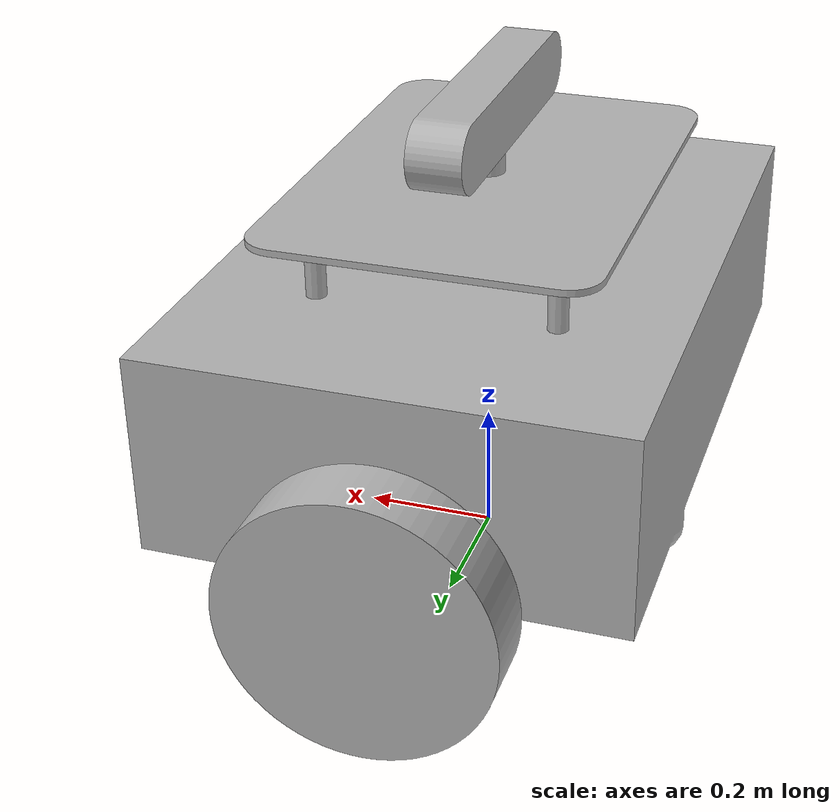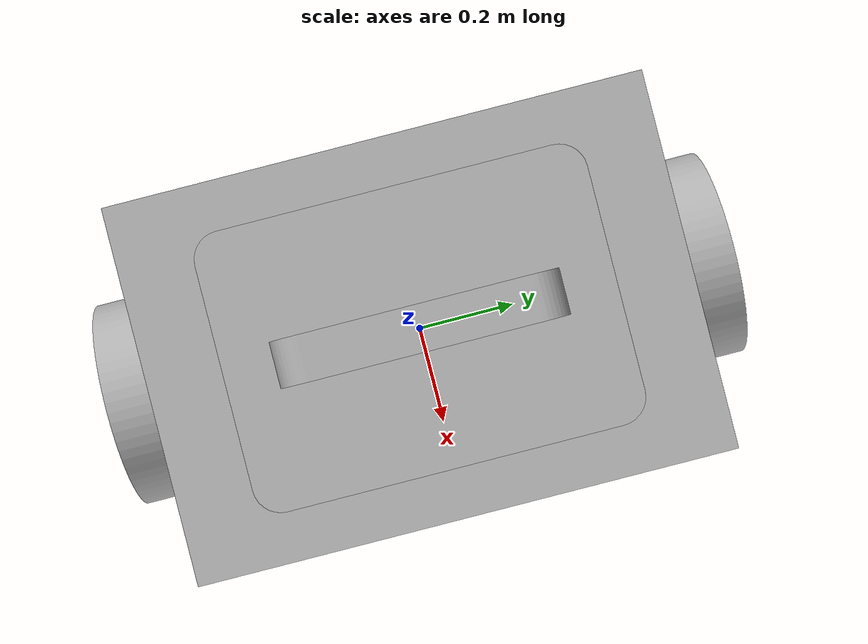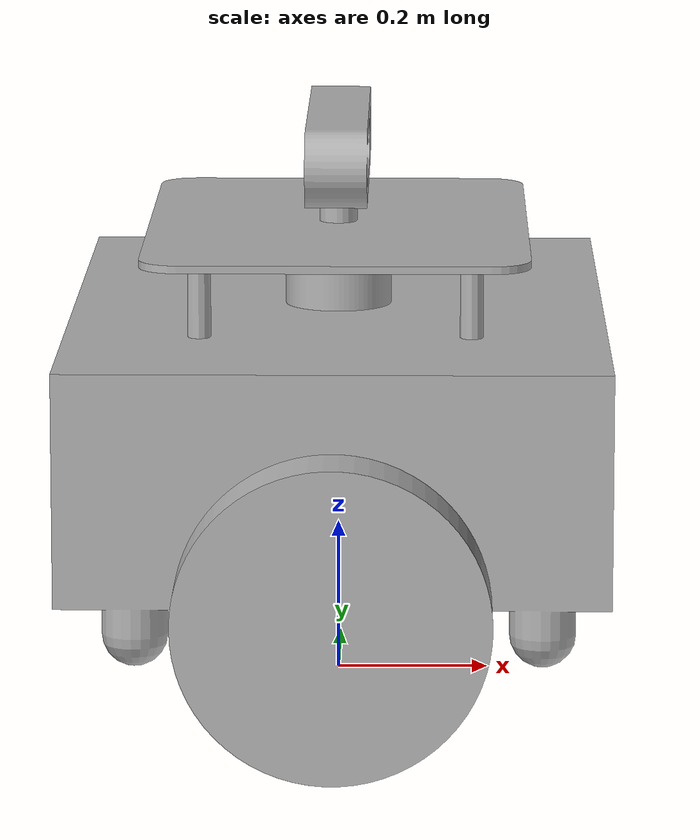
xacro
<?xml version="1.0" ?>
<robot name="fusion_to_urdf_try" xmlns:xacro="http://www.ros.org/wiki/xacro">

<xacro:include filename="$(find fusion_to_urdf_try_description)/urdf/materials.xacro" />
<xacro:include filename="$(find fusion_to_urdf_try_description)/urdf/fusion_to_urdf_try.trans" />
<xacro:include filename="$(find fusion_to_urdf_try_description)/urdf/fusion_to_urdf_try.gazebo" />
<link name="base_link">
  <inertial>
    <origin rpy="0 0 0" xyz="3.836774317438018e-14 -1.7519517431223827e-16 0.3475781551365197"/>
    <mass value="574.1187704132183"/>
    <inertia ixx="51.974322" ixy="-0.0" ixz="0.0" iyy="28.333113" iyz="-0.0" izz="70.960529"/>
  </inertial>
  <visual>
    <origin rpy="0 0 0" xyz="0 0 0"/>
    <geometry>
      <mesh filename="package://fusion_to_urdf_try_description/meshes/base_link.stl" scale="0.001 0.001 0.001"/>
    </geometry>
    <material name="silver"/>
  </visual>
  <collision>
    <origin rpy="0 0 0" xyz="0 0 0"/>
    <geometry>
      <mesh filename="package://fusion_to_urdf_try_description/meshes/base_link.stl" scale="0.001 0.001 0.001"/>
    </geometry>
  </collision>
</link>

<link name="right_wheel_link_1">
  <inertial>
    <origin rpy="0 0 0" xyz="-8.348877145181177e-16 -0.04999999999999993 -4.718447854656915e-16"/>
    <mass value="11.686724671354028"/>
    <inertia ixx="0.126606" ixy="-0.0" ixz="-0.0" iyy="0.233734" iyz="0.0" izz="0.126606"/>
  </inertial>
  <visual>
    <origin rpy="0 0 0" xyz="-0.0 0.5 -0.2"/>
    <geometry>
      <mesh filename="package://fusion_to_urdf_try_description/meshes/right_wheel_link_1.stl" scale="0.001 0.001 0.001"/>
    </geometry>
    <material name="silver"/>
  </visual>
  <collision>
    <origin rpy="0 0 0" xyz="-0.0 0.5 -0.2"/>
    <geometry>
      <mesh filename="package://fusion_to_urdf_try_description/meshes/right_wheel_link_1.stl" scale="0.001 0.001 0.001"/>
    </geometry>
  </collision>
</link>

<link name="left_wheel_link_1">
  <inertial>
    <origin rpy="0 0 0" xyz="-2.3160092400488117e-17 0.050000000000000044 0.0"/>
    <mass value="11.686724671354028"/>
    <inertia ixx="0.126606" ixy="0.0" ixz="0.0" iyy="0.233734" iyz="0.0" izz="0.126606"/>
  </inertial>
  <visual>
    <origin rpy="0 0 0" xyz="-0.0 -0.5 -0.2"/>
    <geometry>
      <mesh filename="package://fusion_to_urdf_try_description/meshes/left_wheel_link_1.stl" scale="0.001 0.001 0.001"/>
    </geometry>
    <material name="silver"/>
  </visual>
  <collision>
    <origin rpy="0 0 0" xyz="-0.0 -0.5 -0.2"/>
    <geometry>
      <mesh filename="package://fusion_to_urdf_try_description/meshes/left_wheel_link_1.stl" scale="0.001 0.001 0.001"/>
    </geometry>
  </collision>
</link>

<link name="lidar_link_1">
  <inertial>
    <origin rpy="0 0 0" xyz="-7.060360187511366e-18 -2.155131490299886e-17 0.03689248889946972"/>
    <mass value="8.904370924987676"/>
    <inertia ixx="0.014807" ixy="0.0" ixz="-0.0" iyy="0.014807" iyz="-0.0" izz="0.021496"/>
  </inertial>
  <visual>
    <origin rpy="0 0 0" xyz="-0.0 -0.0 -0.5"/>
    <geometry>
      <mesh filename="package://fusion_to_urdf_try_description/meshes/lidar_link_1.stl" scale="0.001 0.001 0.001"/>
    </geometry>
    <material name="silver"/>
  </visual>
  <collision>
    <origin rpy="0 0 0" xyz="-0.0 -0.0 -0.5"/>
    <geometry>
      <mesh filename="package://fusion_to_urdf_try_description/meshes/lidar_link_1.stl" scale="0.001 0.001 0.001"/>
    </geometry>
  </collision>
</link>

<link name="pad_link_1">
  <inertial>
    <origin rpy="0 0 0" xyz="1.4361856253843233e-14 -8.137029039004664e-17 0.10582344929719556"/>
    <mass value="5.8157379180789555"/>
    <inertia ixx="0.228618" ixy="-0.0" ixz="0.0" iyy="0.116814" iyz="0.0" izz="0.344992"/>
  </inertial>
  <visual>
    <origin rpy="0 0 0" xyz="-0.0 -0.0 -0.5"/>
    <geometry>
      <mesh filename="package://fusion_to_urdf_try_description/meshes/pad_link_1.stl" scale="0.001 0.001 0.001"/>
    </geometry>
    <material name="silver"/>
  </visual>
  <collision>
    <origin rpy="0 0 0" xyz="-0.0 -0.0 -0.5"/>
    <geometry>
      <mesh filename="package://fusion_to_urdf_try_description/meshes/pad_link_1.stl" scale="0.001 0.001 0.001"/>
    </geometry>
  </collision>
</link>

<link name="rgbd_link_1">
  <inertial>
    <origin rpy="0 0 0" xyz="-0.00132427759931936 0.0022759115610179186 0.05000124610435108"/>
    <mass value="5.943682567131456"/>
    <inertia ixx="0.111317" ixy="-0.030273" ixz="-0.0" iyy="0.016706" iyz="0.0" izz="0.118167"/>
  </inertial>
  <visual>
    <origin rpy="0 0 0" xyz="-0.0 -0.0 -0.66"/>
    <geometry>
      <mesh filename="package://fusion_to_urdf_try_description/meshes/rgbd_link_1.stl" scale="0.001 0.001 0.001"/>
    </geometry>
    <material name="silver"/>
  </visual>
  <collision>
    <origin rpy="0 0 0" xyz="-0.0 -0.0 -0.66"/>
    <geometry>
      <mesh filename="package://fusion_to_urdf_try_description/meshes/rgbd_link_1.stl" scale="0.001 0.001 0.001"/>
    </geometry>
  </collision>
</link>

<joint name="right_wheel_joint" type="continuous">
  <origin rpy="0 0 0" xyz="0.0 -0.5 0.2"/>
  <parent link="base_link"/>
  <child link="right_wheel_link_1"/>
  <axis xyz="0.0 -1.0 0.0"/>
</joint>

<joint name="left_whel_joint" type="continuous">
  <origin rpy="0 0 0" xyz="0.0 0.5 0.2"/>
  <parent link="base_link"/>
  <child link="left_wheel_link_1"/>
  <axis xyz="0.0 1.0 0.0"/>
</joint>

<joint name="lidar_joint" type="continuous">
  <origin rpy="0 0 0" xyz="0.0 0.0 0.5"/>
  <parent link="base_link"/>
  <child link="lidar_link_1"/>
  <axis xyz="0.0 0.0 1.0"/>
</joint>

<joint name="pad_fix_joint" type="fixed">
  <origin rpy="0 0 0" xyz="0.0 0.0 0.5"/>
  <parent link="base_link"/>
  <child link="pad_link_1"/>
</joint>

<joint name="rgbd_joint" type="continuous">
  <origin rpy="0 0 0" xyz="0.0 0.0 0.16"/>
  <parent link="pad_link_1"/>
  <child link="rgbd_link_1"/>
  <axis xyz="0.0 0.0 1.0"/>
</joint>

</robot>

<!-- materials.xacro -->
<robot name="fusion_to_urdf_try" xmlns:xacro="http://www.ros.org/wiki/xacro" >

<material name="silver">
  <color rgba="0.700 0.700 0.700 1.000"/>
</material>

</robot>

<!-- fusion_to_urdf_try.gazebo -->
<robot name="fusion_to_urdf_try" xmlns:xacro="http://www.ros.org/wiki/xacro" >

<xacro:property name="body_color" value="Gazebo/Silver" />

<gazebo>
  <plugin filename="libgazebo_ros_control.so" name="control"/>
</gazebo>
<gazebo reference="base_link">
  <material>${body_color}</material>
  <mu1>0.2</mu1>
  <mu2>0.2</mu2>
  <selfCollide>true</selfCollide>
  <gravity>true</gravity>
</gazebo>

<gazebo reference="right_wheel_link_1">
  <material>${body_color}</material>
  <mu1>0.2</mu1>
  <mu2>0.2</mu2>
  <selfCollide>true</selfCollide>
</gazebo>

<gazebo reference="left_wheel_link_1">
  <material>${body_color}</material>
  <mu1>0.2</mu1>
  <mu2>0.2</mu2>
  <selfCollide>true</selfCollide>
</gazebo>

<gazebo reference="lidar_link_1">
  <material>${body_color}</material>
  <mu1>0.2</mu1>
  <mu2>0.2</mu2>
  <selfCollide>true</selfCollide>
</gazebo>

<gazebo reference="pad_link_1">
  <material>${body_color}</material>
  <mu1>0.2</mu1>
  <mu2>0.2</mu2>
  <selfCollide>true</selfCollide>
</gazebo>

<gazebo reference="rgbd_link_1">
  <material>${body_color}</material>
  <mu1>0.2</mu1>
  <mu2>0.2</mu2>
  <selfCollide>true</selfCollide>
</gazebo>

</robot>
